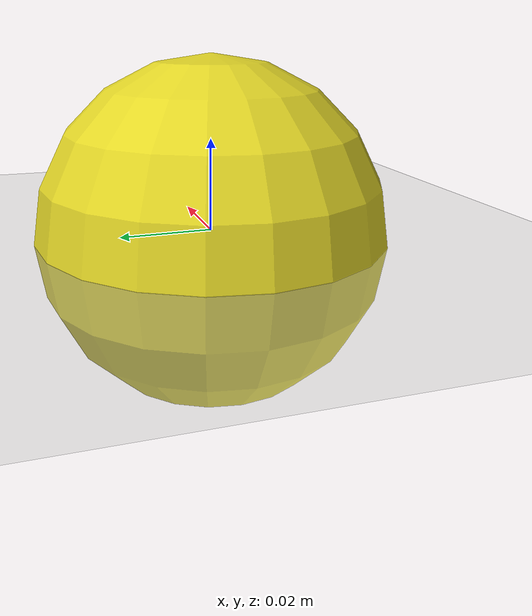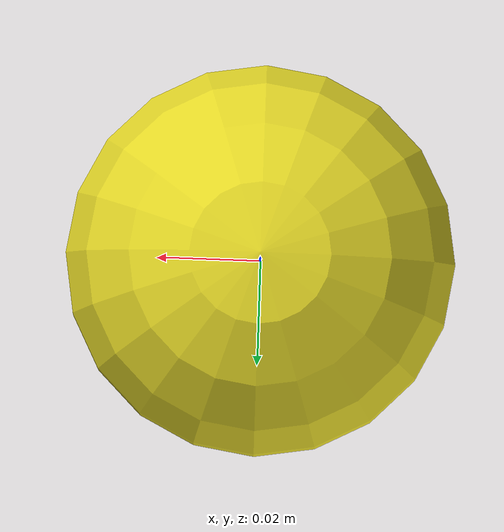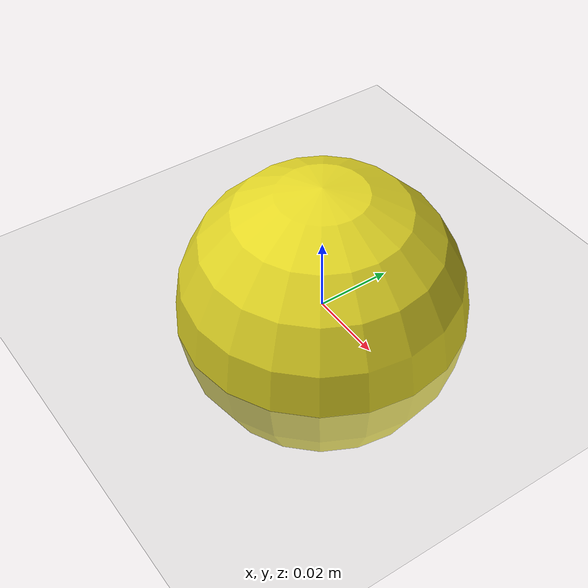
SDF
<sdf version="1.4">
  <world name="default">

    <plugin name="ros_link_attacher_plugin" filename="libgazebo_ros_link_attacher.so"/>

    <scene>
      <ambient>0.4 0.4 0.4 1</ambient>
      <background>0.7 0.7 0.7 1</background>
      <shadows>true</shadows>
    </scene>

    <!-- A global light source -->
    <include>
      <uri>model://sun</uri>
    </include>

    <!-- A ground plane -->
    <include>
      <uri>model://ground_plane</uri>
    </include>

    <!-- A yellow ball -->
    <include>
      <uri>model://yellow_ball</uri>
    </include>

    <physics type="ode">
      <real_time_update_rate>1000.0</real_time_update_rate>
      <max_step_size>0.001</max_step_size>
      <real_time_factor>1</real_time_factor>
      <ode>
        <solver>
          <type>quick</type>
          <iters>150</iters>
          <precon_iters>0</precon_iters>
          <sor>1.400000</sor>
          <use_dynamic_moi_rescaling>1</use_dynamic_moi_rescaling>
        </solver>
        <constraints>
          <cfm>0.00001</cfm>
          <erp>0.2</erp>
          <contact_max_correcting_vel>2000.000000</contact_max_correcting_vel>
          <contact_surface_layer>0.01000</contact_surface_layer>
        </constraints>
      </ode>
    </physics>
  </world>

</sdf>

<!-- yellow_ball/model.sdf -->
<sdf version='1.7'>
  <model name='yellow_ball'>
    <link name='link'>
      <inertial>
        <mass>0.001</mass>
        <inertia>
          <ixx>0.1</ixx>
          <ixy>0</ixy>
          <ixz>0</ixz>
          <iyy>0.1</iyy>
          <iyz>0</iyz>
          <izz>0.1</izz>
        </inertia>
        <pose>0 0 0 0 -0 0</pose>
      </inertial>
      <self_collide>0</self_collide>
      <enable_wind>0</enable_wind>
      <kinematic>0</kinematic>
      <pose>0 0 0 0 -0 0</pose>
      <gravity>1</gravity>
      <visual name='visual'>
        <geometry>
          <sphere>
            <radius>0.0375121</radius>
          </sphere>
        </geometry>
        <material>
          <script>
            <name>Gazebo/Yellow</name>
            <uri>file://media/materials/scripts/gazebo.material</uri>
          </script>
          <shader type='pixel'>
            <normal_map>__default__</normal_map>
          </shader>
          <ambient>1 1 0 1</ambient>
          <diffuse>1 1 0 1</diffuse>
          <emissive>0 0 0 1</emissive>
        </material>
        <pose>0 0 0 0 -0 0</pose>
        <transparency>0</transparency>
        <cast_shadows>1</cast_shadows>
      </visual>
      <collision name='collision'>
        <laser_retro>0</laser_retro>
        <max_contacts>10</max_contacts>
        <pose>0 0 0 0 -0 0</pose>
        <geometry>
          <sphere>
            <radius>0.037512</radius>
          </sphere>
        </geometry>
        <surface>
          <friction>
            <ode>
              <mu>0</mu>
              <mu2>0</mu2>
              <fdir1>0 0 0</fdir1>
              <slip1>0</slip1>
              <slip2>0</slip2>
            </ode>
            <torsional>
              <coefficient>1</coefficient>
              <patch_radius>0</patch_radius>
              <surface_radius>0</surface_radius>
              <use_patch_radius>1</use_patch_radius>
              <ode>
                <slip>0</slip>
              </ode>
            </torsional>
          </friction>
          <bounce>
            <restitution_coefficient>0</restitution_coefficient>
            <threshold>1e+06</threshold>
          </bounce>
          <contact>
            <collide_without_contact>0</collide_without_contact>
            <collide_without_contact_bitmask>1</collide_without_contact_bitmask>
            <collide_bitmask>1</collide_bitmask>
            <ode>
              <soft_cfm>0</soft_cfm>
              <soft_erp>0.2</soft_erp>
              <kp>1e+13</kp>
              <kd>1</kd>
              <max_vel>0.01</max_vel>
              <min_depth>0</min_depth>
            </ode>
            <bullet>
              <split_impulse>1</split_impulse>
              <split_impulse_penetration_threshold>-0.01</split_impulse_penetration_threshold>
              <soft_cfm>0</soft_cfm>
              <soft_erp>0.2</soft_erp>
              <kp>1e+13</kp>
              <kd>1</kd>
            </bullet>
          </contact>
        </surface>
      </collision>
    </link>
    <static>0</static>
    <allow_auto_disable>1</allow_auto_disable>
    <plugin name="ball_moving_plugin" filename="libball_moving_plugin.so"/>
  </model>
</sdf>
